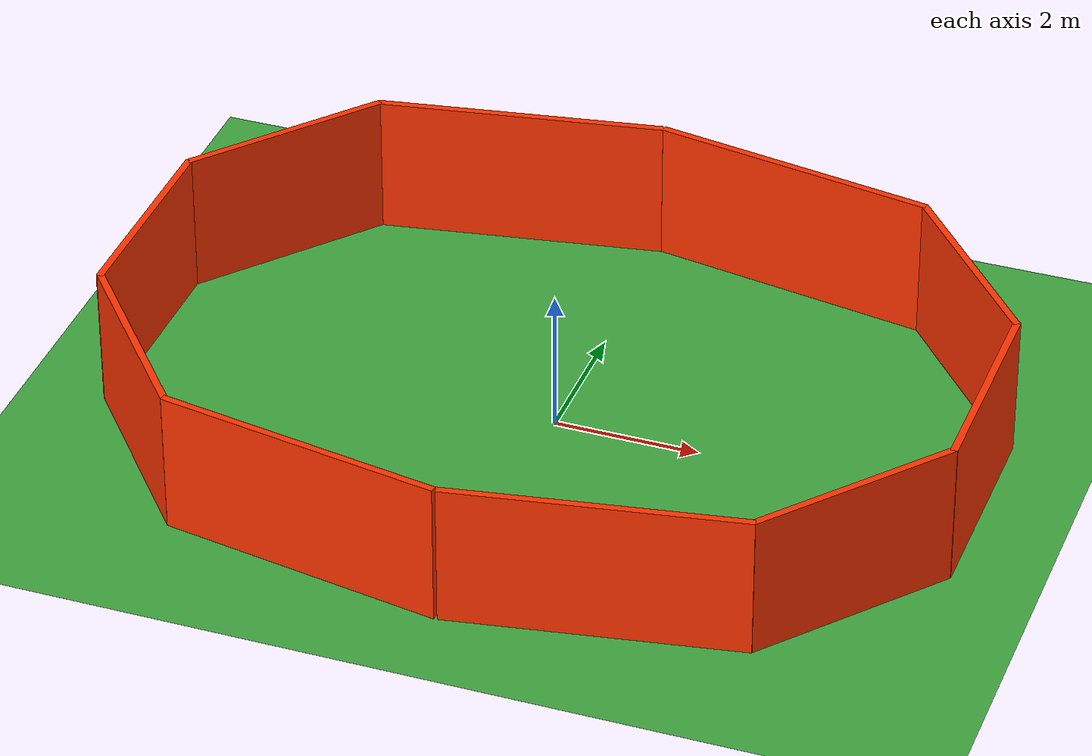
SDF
<?xml version="1.0" encoding="UTF-8"?>
<sdf version="1.9">
  <world name="leo_p6">
    <physics type="ode">
      <max_step_size>0.004</max_step_size>
      <real_time_factor>1.0</real_time_factor>
      <real_time_update_rate>250</real_time_update_rate>
    </physics>
    <gravity>0 0 -9.8</gravity>
    <magnetic_field>6e-06 2.3e-05 -4.2e-05</magnetic_field>
    <atmosphere type="adiabatic"/>
    <scene>
      <grid>false</grid>
      <ambient>0.4 0.4 0.4 1</ambient>
      <background>0.7 0.7 0.7 1</background>
      <shadows>true</shadows>
    </scene>
    <model name="ground_plane">
      <static>true</static>
      <link name="link">
        <collision name="collision">
          <geometry>
            <plane>
              <normal>0 0 1</normal>
              <size>1 1</size>
            </plane>
          </geometry>
          <surface>
            <friction>
              <ode/>
            </friction>
            <bounce/>
            <contact/>
          </surface>
        </collision>
        <visual name="visual">
          <geometry>
            <plane>
              <normal>0 0 1</normal>
              <size>500 500</size>
            </plane>
          </geometry>
          <material>
            <ambient>0.15 0.45 0.15 1</ambient>
            <diffuse>0.25 0.65 0.25 1</diffuse>
            <specular>0.05 0.05 0.05 1</specular>
          </material>
        </visual>
        <pose>0 0 0 0 -0 0</pose>
        <inertial>
          <pose>0 0 0 0 -0 0</pose>
          <mass>1</mass>
          <inertia>
            <ixx>1</ixx>
            <ixy>0</ixy>
            <ixz>0</ixz>
            <iyy>1</iyy>
            <iyz>0</iyz>
            <izz>1</izz>
          </inertia>
        </inertial>
        <enable_wind>false</enable_wind>
      </link>
      <pose>0 0 0 0 -0 0</pose>
      <self_collide>false</self_collide>
    </model>
    <light name="sunUTC" type="directional">
      <pose>0 0 500 0 -0 0</pose>
      <cast_shadows>true</cast_shadows>
      <intensity>1</intensity>
      <direction>0.001 0.625 -0.78</direction>
      <diffuse>0.904 0.904 0.904 1</diffuse>
      <specular>0.271 0.271 0.271 1</specular>
      <attenuation>
        <range>2000</range>
        <linear>0</linear>
        <constant>1</constant>
        <quadratic>0</quadratic>
      </attenuation>
      <spot>
        <inner_angle>0</inner_angle>
        <outer_angle>0</outer_angle>
        <falloff>0</falloff>
      </spot>
    </light>
    <spherical_coordinates>
      <surface_model>EARTH_WGS84</surface_model>
      <world_frame_orientation>ENU</world_frame_orientation>
      <latitude_deg>47.397971057728974</latitude_deg>
      <longitude_deg> 8.546163739800146</longitude_deg>
      <elevation>0</elevation>
    </spherical_coordinates>

    <!-- U-shaped obstacle -->
    <model name="walls">
      <static>true</static>
      <pose>4 0 0 0 0 0</pose>
      <link name="wall_1">
        <pose>-2.02 4.1 1 0 0 1.4</pose>
        <collision name="collision">
          <geometry>
            <box>
              <size>0.1 4 2</size>
            </box>
          </geometry>
        </collision>
        <visual name="visual">
          <geometry>
            <box>
              <size>0.1 4 2</size>
            </box>
          </geometry>
          <material>
            <ambient>1 0.2 0 1</ambient>
            <diffuse>1 0.2 0 1</diffuse>
          </material>
        </visual>
      </link>
      <link name="wall_2">
        <pose>0.88 2.62 1 0 0 -2.45</pose>
        <collision name="collision">
          <geometry>
            <box>
              <size>0.1 3 2</size>
            </box>
          </geometry>
        </collision>
        <visual name="visual">
          <geometry>
            <box>
              <size>0.1 3 2</size>
            </box>
          </geometry>
          <material>
            <ambient>1 0.2 0 1</ambient>
            <diffuse>1 0.2 0 1</diffuse>
          </material>
        </visual>
      </link>
      <link name="wall_3">
        <pose>1.83 0 1 0 0 0</pose>
        <collision name="collision">
          <geometry>
            <box>
              <size>0.1 3 2</size>
            </box>
          </geometry>
        </collision>
        <visual name="visual">
          <geometry>
            <box>
              <size>0.1 3 2</size>
            </box>
          </geometry>
          <material>
            <ambient>1 0.2 0 1</ambient>
            <diffuse>1 0.2 0 1</diffuse>
          </material>
        </visual>
      </link>
      <link name="wall_4">
        <pose>-2.02 -4.1 1 0 0 -1.4</pose>
        <collision name="collision">
          <geometry>
            <box>
         '     <size>0.1 4 2</size>
            </box>
          </geometry>
        </collision>
        <visual name="visual">
          <geometry>
            <box>
              <size>0.1 4 2</size>
            </box>
          </geometry>
          <material>
            <ambient>1 0.2 0 1</ambient>
            <diffuse>1 0.2 0 1</diffuse>
          </material>
        </visual>
      </link>
      <link name="wall_5">
        <pose>0.88 -2.62 1 0 0 2.45</pose>
        <collision name="collision">
          <geometry>
            <box>
              <size>0.1 3 2</size>
            </box>
          </geometry>
        </collision>
        <visual name="visual">
          <geometry>
            <box>
              <size>0.1 3 2</size>
            </box>
          </geometry>
          <material>
            <ambient>1 0.2 0 1</ambient>
            <diffuse>1 0.2 0 1</diffuse>
          </material>
        </visual>
      </link>
    </model>

    <model name="walls_2">
      <static>true</static>
      <pose>-4 0 0 0 0 3.14</pose>
      <link name="wall_1">
        <pose>-2.02 4.1 1 0 0 1.4</pose>
        <collision name="collision">
          <geometry>
            <box>
              <size>0.1 4 2</size>
            </box>
          </geometry>
        </collision>
        <visual name="visual">
          <geometry>
            <box>
              <size>0.1 4 2</size>
            </box>
          </geometry>
          <material>
            <ambient>1 0.2 0 1</ambient>
            <diffuse>1 0.2 0 1</diffuse>
          </material>
        </visual>
      </link>
      <link name="wall_2">
        <pose>0.88 2.62 1 0 0 -2.45</pose>
        <collision name="collision">
          <geometry>
            <box>
              <size>0.1 3 2</size>
            </box>
          </geometry>
        </collision>
        <visual name="visual">
          <geometry>
            <box>
              <size>0.1 3 2</size>
            </box>
          </geometry>
          <material>
            <ambient>1 0.2 0 1</ambient>
            <diffuse>1 0.2 0 1</diffuse>
          </material>
        </visual>
      </link>
      <link name="wall_3">
        <pose>1.83 0 1 0 0 0</pose>
        <collision name="collision">
          <geometry>
            <box>
              <size>0.1 3 2</size>
            </box>
          </geometry>
        </collision>
        <visual name="visual">
          <geometry>
            <box>
              <size>0.1 3 2</size>
            </box>
          </geometry>
          <material>
            <ambient>1 0.2 0 1</ambient>
            <diffuse>1 0.2 0 1</diffuse>
          </material>
        </visual>
      </link>
      <link name="wall_4">
        <pose>-2.02 -4.1 1 0 0 -1.4</pose>
        <collision name="collision">
          <geometry>
            <box>
         '     <size>0.1 4 2</size>
            </box>
          </geometry>
        </collision>
        <visual name="visual">
          <geometry>
            <box>
              <size>0.1 4 2</size>
            </box>
          </geometry>
          <material>
            <ambient>1 0.2 0 1</ambient>
            <diffuse>1 0.2 0 1</diffuse>
          </material>
        </visual>
      </link>
      <link name="wall_5">
        <pose>0.88 -2.62 1 0 0 2.45</pose>
        <collision name="collision">
          <geometry>
            <box>
              <size>0.1 3 2</size>
            </box>
          </geometry>
        </collision>
        <visual name="visual">
          <geometry>
            <box>
              <size>0.1 3 2</size>
            </box>
          </geometry>
          <material>
            <ambient>1 0.2 0 1</ambient>
            <diffuse>1 0.2 0 1</diffuse>
          </material>
        </visual>
      </link>
    </model>
  </world>
</sdf>
